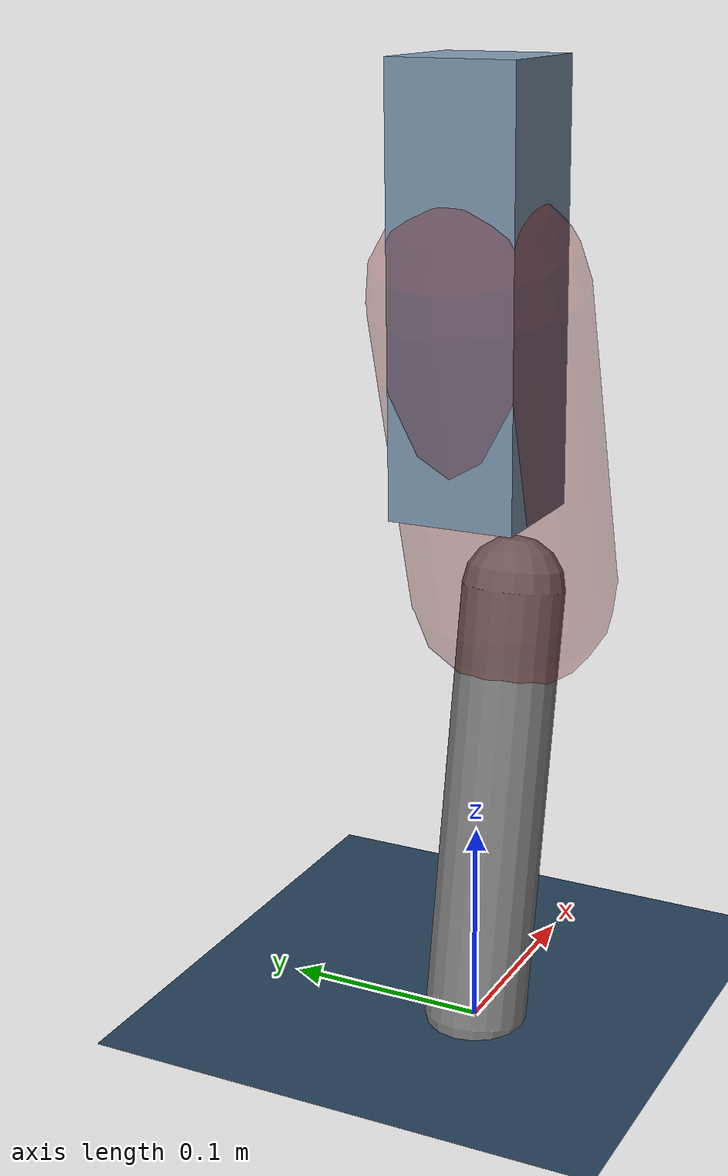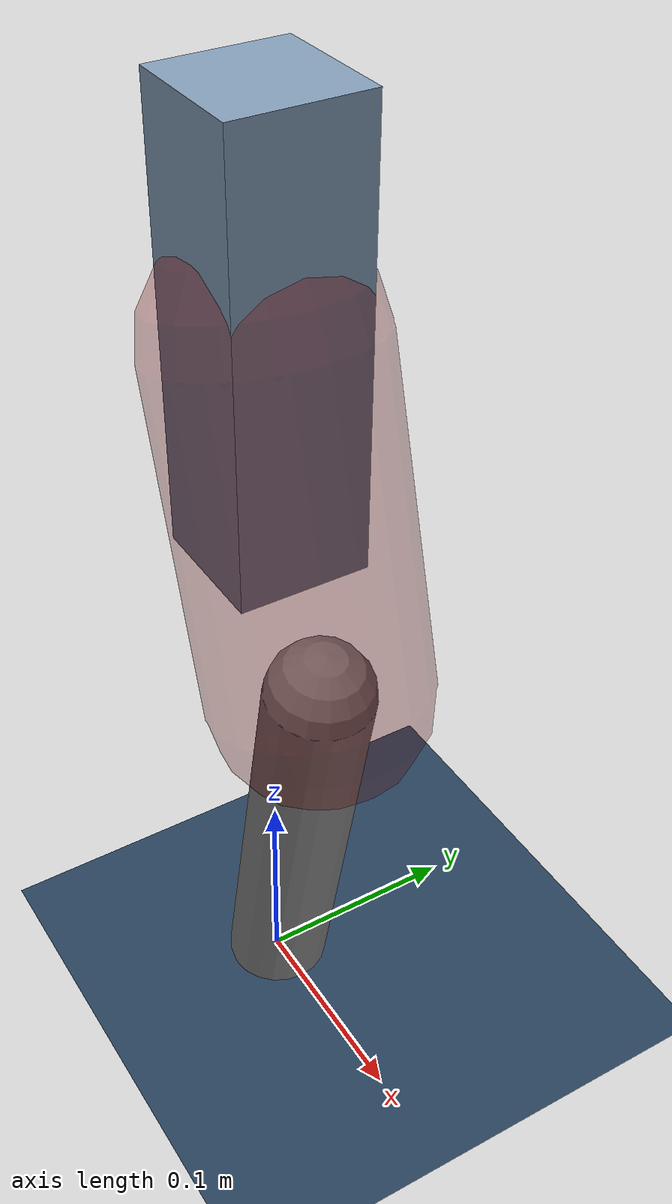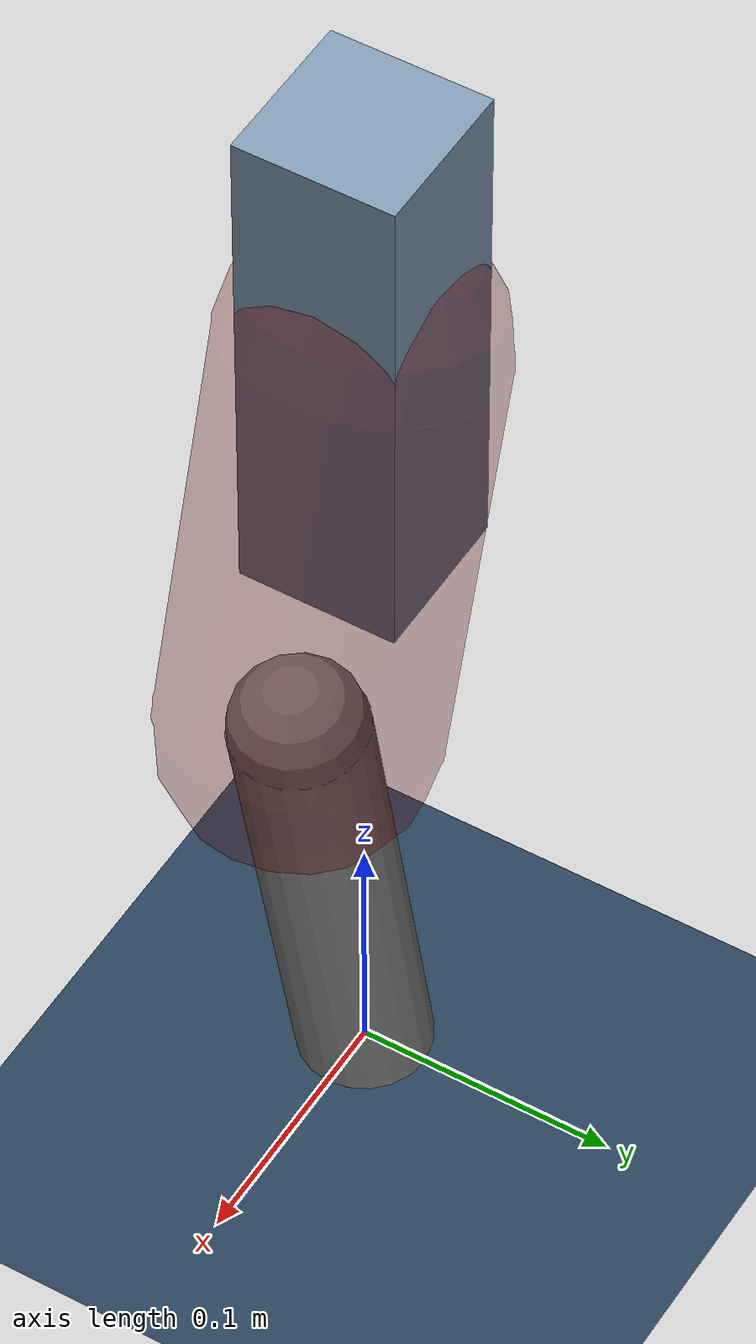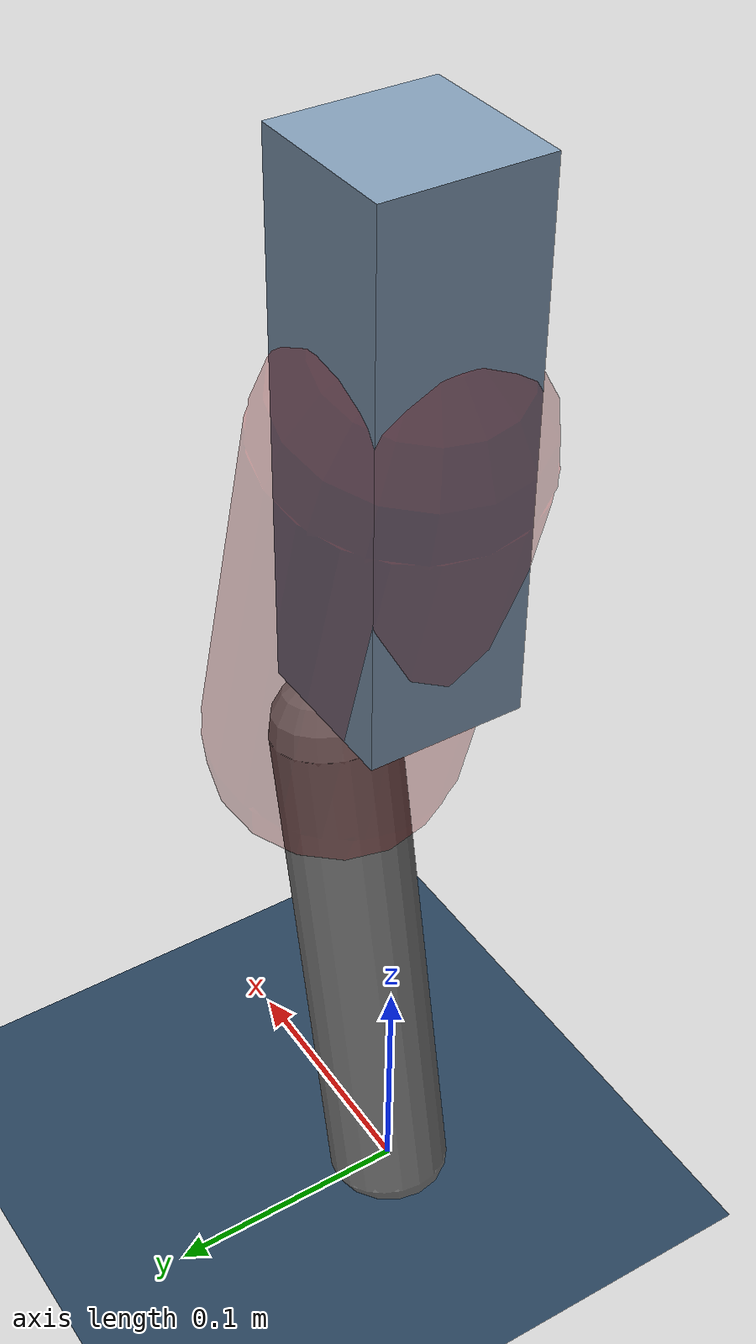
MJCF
<mujoco model="Hopper2D">
	<compiler inertiafromgeom="true" angle="radian" />
	<option timestep="0.001" integrator="implicit" cone="elliptic" solver="Newton" tolerance="1e-10" />

	<default>
		<geom contype="1" conaffinity="1" condim="3" friction="2 0.005 0.0001" solref="0.005 1" />
		<joint limited="true" damping="0.1" />
	</default>

	<asset>
		<texture name="skybox" type="skybox" builtin="gradient" rgb1=".4 .6 .8" rgb2="0 0 0" width="800" height="800" />
		<texture name="grid" type="2d" builtin="checker" rgb1=".1 .2 .3" rgb2=".2 .3 .4" width="300" height="300" mark="edge" markrgb=".2 .3 .4" />
		<material name="ground" texture="grid" texrepeat="1 1" texuniform="true" reflectance="0.1" />
		<material name="leg" rgba="0.5 0.6 0.7 1" />
	</asset>

	<worldbody>

		<geom name="floor" type="plane" size="5 5 0.25" material="ground" />

		<light directional="false" diffuse="0.8 0.8 0.8" specular="0.3 0.3 0.3" pos="0 0 2" dir="0 0 -1" />
		<light mode="targetbodycom" target="base" directional="false" diffuse="0.8 0.8 0.8" specular="0.3 0.3 0.3" pos="0 0 2" dir="0 0 -1" />

		<camera name="fixed" pos="0 -2 1" xyaxes="1 0 0 0 0 1" />
		<camera name="tracking" mode="trackcom" pos="0 -3 1" />

		<body name="root" pos="0 0 0.3583338544226778">
			<joint name="slide_x" type="slide" axis="1 0 0" range="-100 100" />
			<joint name="slide_z" type="slide" axis="0 0 1" range="0 10" />

			<body name="base" pos="0 0 0">
				<geom name="torso" type="box" size="0.03 0.03 0.1" mass="2.391" material="leg" />

				<body name="link1" pos="0 0 0" euler="0 1.2942029780824102 0">
					<joint type="hinge" axis="0 -1 0" pos="0 0 0" name="hinge1" limited="true" range="-3.14 3.14" stiffness="0" damping="0.1" />
					<geom name="thigh" type="capsule" fromto="0 0 0 0.15382595653337208 0 0" size="0.05" rgba="0.5 0 0 0.3" mass="0.617582295680093" />

					<body name="link2" pos="0.15382595653337208 0 0" euler="0 0.47369579100915504 0">
						<joint type="hinge" axis="0 -1 0" pos="0 0 0" name="hinge2" limited="true" range="-3.14 3.14" stiffness="0" damping="0.1" />
						<geom name="shank" type="capsule" fromto="0 0 0 0.21450789788930572 0 0" size="0.025" mass="0.41310631831144456" />

					</body>
				</body>
			</body>
		</body>
	</worldbody>

	<actuator>
		<motor name="torque1" joint="hinge1" ctrlrange="-93.5984110215783 93.5984110215783" ctrllimited="true" gear="1" />
		<motor name="torque2" joint="hinge2" ctrlrange="-20.825597195363166 20.825597195363166" ctrllimited="true" gear="1" />
	</actuator>
</mujoco>
